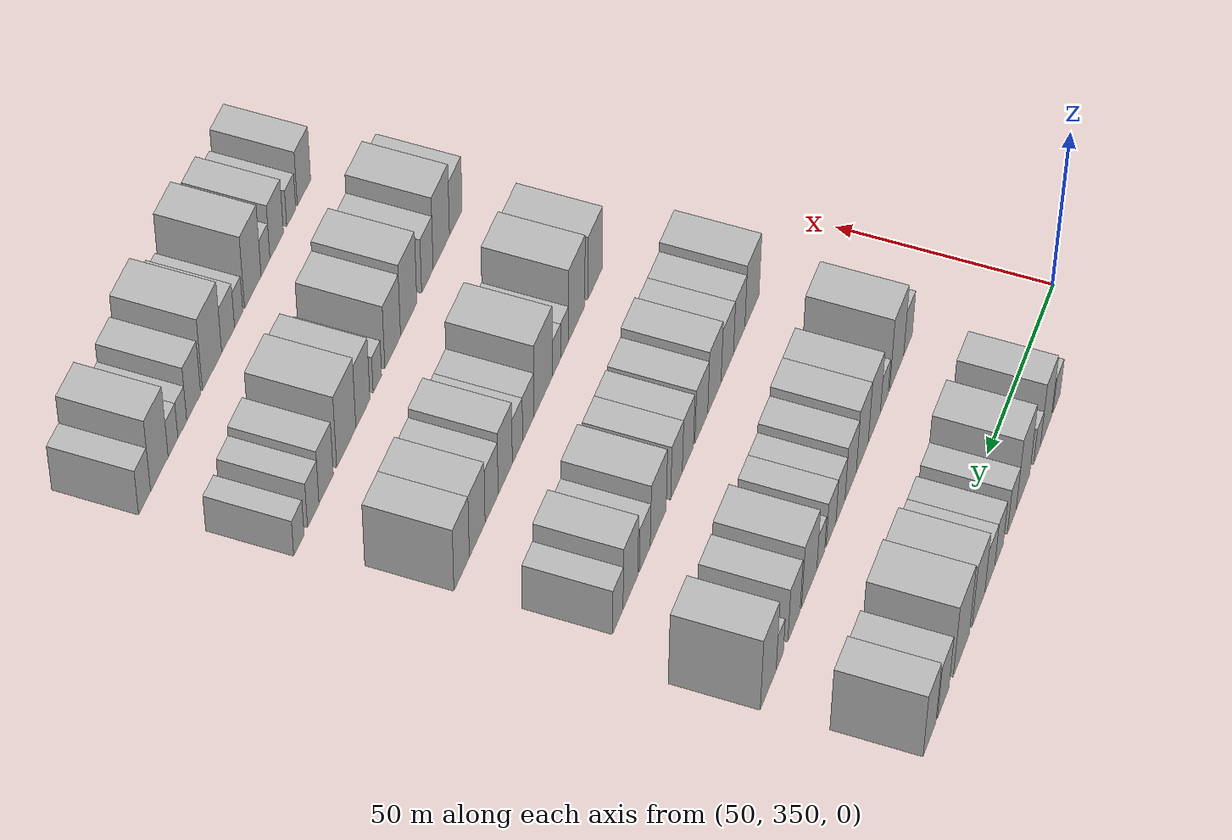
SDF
<sdf version="1.6">
 <world name="default">
  <model name="building_106">
   <static>1</static>
   <pose>50.0000 381.9810 0 0.000000 0.000000 0.000000</pose>
   <link name="link">
    <pose>0 0 6.00 0 0 0</pose>
    <collision name="collision"><geometry><box><size>20.0000 5.7380 12.0000</size></box></geometry></collision>
    <visual name="visual">
     <cast_shadows>0</cast_shadows>
     <geometry><box><size>20.0000 5.7380 12.0000</size></box></geometry>
     <material>
      <script>
       <uri>model://HANNAS_wall/materials/scripts</uri>
       <uri>model://HANNAS_wall/materials/textures</uri>
       <name>vrc/HANNAS_wall</name>
      </script>
     </material>
    </visual>
   </link>
  </model>
  <model name="building_107">
   <static>1</static>
   <pose>50.0000 390.1226 0 0.000000 0.000000 0.000000</pose>
   <link name="link">
    <pose>0 0 10.50 0 0 0</pose>
    <collision name="collision"><geometry><box><size>20.0000 8.5452 21.0000</size></box></geometry></collision>
    <visual name="visual">
     <cast_shadows>0</cast_shadows>
     <geometry><box><size>20.0000 8.5452 21.0000</size></box></geometry>
     <material>
      <script>
       <uri>model://HANNAS_wall/materials/scripts</uri>
       <uri>model://HANNAS_wall/materials/textures</uri>
       <name>vrc/HANNAS_wall</name>
      </script>
     </material>
    </visual>
   </link>
  </model>
  <model name="building_108">
   <static>1</static>
   <pose>50.0000 396.9726 0 0.000000 0.000000 0.000000</pose>
   <link name="link">
    <pose>0 0 6.00 0 0 0</pose>
    <collision name="collision"><geometry><box><size>20.0000 5.1548 12.0000</size></box></geometry></collision>
    <visual name="visual">
     <cast_shadows>0</cast_shadows>
     <geometry><box><size>20.0000 5.1548 12.0000</size></box></geometry>
     <material>
      <script>
       <uri>model://HANNAS_wall/materials/scripts</uri>
       <uri>model://HANNAS_wall/materials/textures</uri>
       <name>vrc/HANNAS_wall</name>
      </script>
     </material>
    </visual>
   </link>
  </model>
  <model name="building_109">
   <static>1</static>
   <pose>50.0000 407.6950 0 0.000000 0.000000 0.000000</pose>
   <link name="link">
    <pose>0 0 12.00 0 0 0</pose>
    <collision name="collision"><geometry><box><size>20.0000 10.2900 24.0000</size></box></geometry></collision>
    <visual name="visual">
     <cast_shadows>0</cast_shadows>
     <geometry><box><size>20.0000 10.2900 24.0000</size></box></geometry>
     <material>
      <script>
       <uri>model://HANNAS_wall/materials/scripts</uri>
       <uri>model://HANNAS_wall/materials/textures</uri>
       <name>vrc/HANNAS_wall</name>
      </script>
     </material>
    </visual>
   </link>
  </model>
  <model name="building_110">
   <static>1</static>
   <pose>50.0000 416.1200 0 0.000000 0.000000 0.000000</pose>
   <link name="link">
    <pose>0 0 7.50 0 0 0</pose>
    <collision name="collision"><geometry><box><size>20.0000 6.5602 15.0000</size></box></geometry></collision>
    <visual name="visual">
     <cast_shadows>0</cast_shadows>
     <geometry><box><size>20.0000 6.5602 15.0000</size></box></geometry>
     <material>
      <script>
       <uri>model://HANNAS_wall/materials/scripts</uri>
       <uri>model://HANNAS_wall/materials/textures</uri>
       <name>vrc/HANNAS_wall</name>
      </script>
     </material>
    </visual>
   </link>
  </model>
  <model name="building_111">
   <static>1</static>
   <pose>50.0000 425.6027 0 0.000000 0.000000 0.000000</pose>
   <link name="link">
    <pose>0 0 7.50 0 0 0</pose>
    <collision name="collision"><geometry><box><size>20.0000 6.4052 15.0000</size></box></geometry></collision>
    <visual name="visual">
     <cast_shadows>0</cast_shadows>
     <geometry><box><size>20.0000 6.4052 15.0000</size></box></geometry>
     <material>
      <script>
       <uri>model://HANNAS_wall/materials/scripts</uri>
       <uri>model://HANNAS_wall/materials/textures</uri>
       <name>vrc/HANNAS_wall</name>
      </script>
     </material>
    </visual>
   </link>
  </model>
  <model name="building_112">
   <static>1</static>
   <pose>50.0000 432.4290 0 0.000000 0.000000 0.000000</pose>
   <link name="link">
    <pose>0 0 7.50 0 0 0</pose>
    <collision name="collision"><geometry><box><size>20.0000 7.2473 15.0000</size></box></geometry></collision>
    <visual name="visual">
     <cast_shadows>0</cast_shadows>
     <geometry><box><size>20.0000 7.2473 15.0000</size></box></geometry>
     <material>
      <script>
       <uri>model://HANNAS_wall/materials/scripts</uri>
       <uri>model://HANNAS_wall/materials/textures</uri>
       <name>vrc/HANNAS_wall</name>
      </script>
     </material>
    </visual>
   </link>
  </model>
  <model name="building_113">
   <static>1</static>
   <pose>50.0000 440.6606 0 0.000000 0.000000 0.000000</pose>
   <link name="link">
    <pose>0 0 10.50 0 0 0</pose>
    <collision name="collision"><geometry><box><size>20.0000 9.2160 21.0000</size></box></geometry></collision>
    <visual name="visual">
     <cast_shadows>0</cast_shadows>
     <geometry><box><size>20.0000 9.2160 21.0000</size></box></geometry>
     <material>
      <script>
       <uri>model://HANNAS_wall/materials/scripts</uri>
       <uri>model://HANNAS_wall/materials/textures</uri>
       <name>vrc/HANNAS_wall</name>
      </script>
     </material>
    </visual>
   </link>
  </model>
  <model name="building_114">
   <static>1</static>
   <pose>50.0000 453.0325 0 0.000000 0.000000 0.000000</pose>
   <link name="link">
    <pose>0 0 12.00 0 0 0</pose>
    <collision name="collision"><geometry><box><size>20.0000 11.5279 24.0000</size></box></geometry></collision>
    <visual name="visual">
     <cast_shadows>0</cast_shadows>
     <geometry><box><size>20.0000 11.5279 24.0000</size></box></geometry>
     <material>
      <script>
       <uri>model://HANNAS_wall/materials/scripts</uri>
       <uri>model://HANNAS_wall/materials/textures</uri>
       <name>vrc/HANNAS_wall</name>
      </script>
     </material>
    </visual>
   </link>
  </model>
  <model name="building_115">
   <static>1</static>
   <pose>50.0000 465.8997 0 0.000000 0.000000 0.000000</pose>
   <link name="link">
    <pose>0 0 9.00 0 0 0</pose>
    <collision name="collision"><geometry><box><size>20.0000 8.2065 18.0000</size></box></geometry></collision>
    <visual name="visual">
     <cast_shadows>0</cast_shadows>
     <geometry><box><size>20.0000 8.2065 18.0000</size></box></geometry>
     <material>
      <script>
       <uri>model://HANNAS_wall/materials/scripts</uri>
       <uri>model://HANNAS_wall/materials/textures</uri>
       <name>vrc/HANNAS_wall</name>
      </script>
     </material>
    </visual>
   </link>
  </model>
  <model name="building_116">
   <static>1</static>
   <pose>50.0000 475.4886 0 0.000000 0.000000 0.000000</pose>
   <link name="link">
    <pose>0 0 10.50 0 0 0</pose>
    <collision name="collision"><geometry><box><size>20.0000 8.9713 21.0000</size></box></geometry></collision>
    <visual name="visual">
     <cast_shadows>0</cast_shadows>
     <geometry><box><size>20.0000 8.9713 21.0000</size></box></geometry>
     <material>
      <script>
       <uri>model://HANNAS_wall/materials/scripts</uri>
       <uri>model://HANNAS_wall/materials/textures</uri>
       <name>vrc/HANNAS_wall</name>
      </script>
     </material>
    </visual>
   </link>
  </model>
  <model name="building_242">
   <static>1</static>
   <pose>85.0000 377.1826 0 0.000000 0.000000 0.000000</pose>
   <link name="link">
    <pose>0 0 7.50 0 0 0</pose>
    <collision name="collision"><geometry><box><size>20.0000 6.2927 15.0000</size></box></geometry></collision>
    <visual name="visual">
     <cast_shadows>0</cast_shadows>
     <geometry><box><size>20.0000 6.2927 15.0000</size></box></geometry>
     <material>
      <script>
       <uri>model://HANNAS_wall/materials/scripts</uri>
       <uri>model://HANNAS_wall/materials/textures</uri>
       <name>vrc/HANNAS_wall</name>
      </script>
     </material>
    </visual>
   </link>
  </model>
  <model name="building_243">
   <static>1</static>
   <pose>85.0000 385.4881 0 0.000000 0.000000 0.000000</pose>
   <link name="link">
    <pose>0 0 12.00 0 0 0</pose>
    <collision name="collision"><geometry><box><size>20.0000 10.3184 24.0000</size></box></geometry></collision>
    <visual name="visual">
     <cast_shadows>0</cast_shadows>
     <geometry><box><size>20.0000 10.3184 24.0000</size></box></geometry>
     <material>
      <script>
       <uri>model://HANNAS_wall/materials/scripts</uri>
       <uri>model://HANNAS_wall/materials/textures</uri>
       <name>vrc/HANNAS_wall</name>
      </script>
     </material>
    </visual>
   </link>
  </model>
  <model name="building_244">
   <static>1</static>
   <pose>85.0000 394.5042 0 0.000000 0.000000 0.000000</pose>
   <link name="link">
    <pose>0 0 6.00 0 0 0</pose>
    <collision name="collision"><geometry><box><size>20.0000 5.7136 12.0000</size></box></geometry></collision>
    <visual name="visual">
     <cast_shadows>0</cast_shadows>
     <geometry><box><size>20.0000 5.7136 12.0000</size></box></geometry>
     <material>
      <script>
       <uri>model://HANNAS_wall/materials/scripts</uri>
       <uri>model://HANNAS_wall/materials/textures</uri>
       <name>vrc/HANNAS_wall</name>
      </script>
     </material>
    </visual>
   </link>
  </model>
  <model name="building_245">
   <static>1</static>
   <pose>85.0000 401.7014 0 0.000000 0.000000 0.000000</pose>
   <link name="link">
    <pose>0 0 10.50 0 0 0</pose>
    <collision name="collision"><geometry><box><size>20.0000 8.6809 21.0000</size></box></geometry></collision>
    <visual name="visual">
     <cast_shadows>0</cast_shadows>
     <geometry><box><size>20.0000 8.6809 21.0000</size></box></geometry>
     <material>
      <script>
       <uri>model://HANNAS_wall/materials/scripts</uri>
       <uri>model://HANNAS_wall/materials/textures</uri>
       <name>vrc/HANNAS_wall</name>
      </script>
     </material>
    </visual>
   </link>
  </model>
  <model name="building_246">
   <static>1</static>
   <pose>85.0000 410.2860 0 0.000000 0.000000 0.000000</pose>
   <link name="link">
    <pose>0 0 10.50 0 0 0</pose>
    <collision name="collision"><geometry><box><size>20.0000 8.4883 21.0000</size></box></geometry></collision>
    <visual name="visual">
     <cast_shadows>0</cast_shadows>
     <geometry><box><size>20.0000 8.4883 21.0000</size></box></geometry>
     <material>
      <script>
       <uri>model://HANNAS_wall/materials/scripts</uri>
       <uri>model://HANNAS_wall/materials/textures</uri>
       <name>vrc/HANNAS_wall</name>
      </script>
     </material>
    </visual>
   </link>
  </model>
  <model name="building_247">
   <static>1</static>
   <pose>85.0000 418.5160 0 0.000000 0.000000 0.000000</pose>
   <link name="link">
    <pose>0 0 9.00 0 0 0</pose>
    <collision name="collision"><geometry><box><size>20.0000 7.9718 18.0000</size></box></geometry></collision>
    <visual name="visual">
     <cast_shadows>0</cast_shadows>
     <geometry><box><size>20.0000 7.9718 18.0000</size></box></geometry>
     <material>
      <script>
       <uri>model://HANNAS_wall/materials/scripts</uri>
       <uri>model://HANNAS_wall/materials/textures</uri>
       <name>vrc/HANNAS_wall</name>
      </script>
     </material>
    </visual>
   </link>
  </model>
  <model name="building_248">
   <static>1</static>
   <pose>85.0000 425.6850 0 0.000000 0.000000 0.000000</pose>
   <link name="link">
    <pose>0 0 7.50 0 0 0</pose>
    <collision name="collision"><geometry><box><size>20.0000 6.3663 15.0000</size></box></geometry></collision>
    <visual name="visual">
     <cast_shadows>0</cast_shadows>
     <geometry><box><size>20.0000 6.3663 15.0000</size></box></geometry>
     <material>
      <script>
       <uri>model://HANNAS_wall/materials/scripts</uri>
       <uri>model://HANNAS_wall/materials/textures</uri>
       <name>vrc/HANNAS_wall</name>
      </script>
     </material>
    </visual>
   </link>
  </model>
  <model name="building_249">
   <static>1</static>
   <pose>85.0000 432.2694 0 0.000000 0.000000 0.000000</pose>
   <link name="link">
    <pose>0 0 7.50 0 0 0</pose>
    <collision name="collision"><geometry><box><size>20.0000 6.8024 15.0000</size></box></geometry></collision>
    <visual name="visual">
     <cast_shadows>0</cast_shadows>
     <geometry><box><size>20.0000 6.8024 15.0000</size></box></geometry>
     <material>
      <script>
       <uri>model://HANNAS_wall/materials/scripts</uri>
       <uri>model://HANNAS_wall/materials/textures</uri>
       <name>vrc/HANNAS_wall</name>
      </script>
     </material>
    </visual>
   </link>
  </model>
  <model name="building_250">
   <static>1</static>
   <pose>85.0000 439.3842 0 0.000000 0.000000 0.000000</pose>
   <link name="link">
    <pose>0 0 6.00 0 0 0</pose>
    <collision name="collision"><geometry><box><size>20.0000 5.4273 12.0000</size></box></geometry></collision>
    <visual name="visual">
     <cast_shadows>0</cast_shadows>
     <geometry><box><size>20.0000 5.4273 12.0000</size></box></geometry>
     <material>
      <script>
       <uri>model://HANNAS_wall/materials/scripts</uri>
       <uri>model://HANNAS_wall/materials/textures</uri>
       <name>vrc/HANNAS_wall</name>
      </script>
     </material>
    </visual>
   </link>
  </model>
  <model name="building_251">
   <static>1</static>
   <pose>85.0000 447.3006 0 0.000000 0.000000 0.000000</pose>
   <link name="link">
    <pose>0 0 10.50 0 0 0</pose>
    <collision name="collision"><geometry><box><size>20.0000 10.4056 21.0000</size></box></geometry></collision>
    <visual name="visual">
     <cast_shadows>0</cast_shadows>
     <geometry><box><size>20.0000 10.4056 21.0000</size></box></geometry>
     <material>
      <script>
       <uri>model://HANNAS_wall/materials/scripts</uri>
       <uri>model://HANNAS_wall/materials/textures</uri>
       <name>vrc/HANNAS_wall</name>
      </script>
     </material>
    </visual>
   </link>
  </model>
  <model name="building_252">
   <static>1</static>
   <pose>85.0000 457.6232 0 0.000000 0.000000 0.000000</pose>
   <link name="link">
    <pose>0 0 9.00 0 0 0</pose>
    <collision name="collision"><geometry><box><size>20.0000 8.2396 18.0000</size></box></geometry></collision>
    <visual name="visual">
     <cast_shadows>0</cast_shadows>
     <geometry><box><size>20.0000 8.2396 18.0000</size></box></geometry>
     <material>
      <script>
       <uri>model://HANNAS_wall/materials/scripts</uri>
       <uri>model://HANNAS_wall/materials/textures</uri>
       <name>vrc/HANNAS_wall</name>
      </script>
     </material>
    </visual>
   </link>
  </model>
  <model name="building_253">
   <static>1</static>
   <pose>85.0000 467.1551 0 0.000000 0.000000 0.000000</pose>
   <link name="link">
    <pose>0 0 6.00 0 0 0</pose>
    <collision name="collision"><geometry><box><size>20.0000 4.8241 12.0000</size></box></geometry></collision>
    <visual name="visual">
     <cast_shadows>0</cast_shadows>
     <geometry><box><size>20.0000 4.8241 12.0000</size></box></geometry>
     <material>
      <script>
       <uri>model://HANNAS_wall/materials/scripts</uri>
       <uri>model://HANNAS_wall/materials/textures</uri>
       <name>vrc/HANNAS_wall</name>
      </script>
     </material>
    </visual>
   </link>
  </model>
  <model name="building_254">
   <static>1</static>
   <pose>85.0000 474.8365 0 0.000000 0.000000 0.000000</pose>
   <link name="link">
    <pose>0 0 12.00 0 0 0</pose>
    <collision name="collision"><geometry><box><size>20.0000 10.5388 24.0000</size></box></geometry></collision>
    <visual name="visual">
     <cast_shadows>0</cast_shadows>
     <geometry><box><size>20.0000 10.5388 24.0000</size></box></geometry>
     <material>
      <script>
       <uri>model://HANNAS_wall/materials/scripts</uri>
       <uri>model://HANNAS_wall/materials/textures</uri>
       <name>vrc/HANNAS_wall</name>
      </script>
     </material>
    </visual>
   </link>
  </model>
  <model name="building_369">
   <static>1</static>
   <pose>120.0000 379.5333 0 0.000000 0.000000 0.000000</pose>
   <link name="link">
    <pose>0 0 10.50 0 0 0</pose>
    <collision name="collision"><geometry><box><size>20.0000 9.8755 21.0000</size></box></geometry></collision>
    <visual name="visual">
     <cast_shadows>0</cast_shadows>
     <geometry><box><size>20.0000 9.8755 21.0000</size></box></geometry>
     <material>
      <script>
       <uri>model://HANNAS_wall/materials/scripts</uri>
       <uri>model://HANNAS_wall/materials/textures</uri>
       <name>vrc/HANNAS_wall</name>
      </script>
     </material>
    </visual>
   </link>
  </model>
  <model name="building_370">
   <static>1</static>
   <pose>120.0000 388.4076 0 0.000000 0.000000 0.000000</pose>
   <link name="link">
    <pose>0 0 9.00 0 0 0</pose>
    <collision name="collision"><geometry><box><size>20.0000 7.8731 18.0000</size></box></geometry></collision>
    <visual name="visual">
     <cast_shadows>0</cast_shadows>
     <geometry><box><size>20.0000 7.8731 18.0000</size></box></geometry>
     <material>
      <script>
       <uri>model://HANNAS_wall/materials/scripts</uri>
       <uri>model://HANNAS_wall/materials/textures</uri>
       <name>vrc/HANNAS_wall</name>
      </script>
     </material>
    </visual>
   </link>
  </model>
  <model name="building_371">
   <static>1</static>
   <pose>120.0000 396.6128 0 0.000000 0.000000 0.000000</pose>
   <link name="link">
    <pose>0 0 9.00 0 0 0</pose>
    <collision name="collision"><geometry><box><size>20.0000 8.5371 18.0000</size></box></geometry></collision>
    <visual name="visual">
     <cast_shadows>0</cast_shadows>
     <geometry><box><size>20.0000 8.5371 18.0000</size></box></geometry>
     <material>
      <script>
       <uri>model://HANNAS_wall/materials/scripts</uri>
       <uri>model://HANNAS_wall/materials/textures</uri>
       <name>vrc/HANNAS_wall</name>
      </script>
     </material>
    </visual>
   </link>
  </model>
  <model name="building_372">
   <static>1</static>
   <pose>120.0000 405.4107 0 0.000000 0.000000 0.000000</pose>
   <link name="link">
    <pose>0 0 10.50 0 0 0</pose>
    <collision name="collision"><geometry><box><size>20.0000 9.0587 21.0000</size></box></geometry></collision>
    <visual name="visual">
     <cast_shadows>0</cast_shadows>
     <geometry><box><size>20.0000 9.0587 21.0000</size></box></geometry>
     <material>
      <script>
       <uri>model://HANNAS_wall/materials/scripts</uri>
       <uri>model://HANNAS_wall/materials/textures</uri>
       <name>vrc/HANNAS_wall</name>
      </script>
     </material>
    </visual>
   </link>
  </model>
  <model name="building_373">
   <static>1</static>
   <pose>120.0000 414.2341 0 0.000000 0.000000 0.000000</pose>
   <link name="link">
    <pose>0 0 9.00 0 0 0</pose>
    <collision name="collision"><geometry><box><size>20.0000 8.5881 18.0000</size></box></geometry></collision>
    <visual name="visual">
     <cast_shadows>0</cast_shadows>
     <geometry><box><size>20.0000 8.5881 18.0000</size></box></geometry>
     <material>
      <script>
       <uri>model://HANNAS_wall/materials/scripts</uri>
       <uri>model://HANNAS_wall/materials/textures</uri>
       <name>vrc/HANNAS_wall</name>
      </script>
     </material>
    </visual>
   </link>
  </model>
  <model name="building_374">
   <static>1</static>
   <pose>120.0000 423.2610 0 0.000000 0.000000 0.000000</pose>
   <link name="link">
    <pose>0 0 9.00 0 0 0</pose>
    <collision name="collision"><geometry><box><size>20.0000 7.4658 18.0000</size></box></geometry></collision>
    <visual name="visual">
     <cast_shadows>0</cast_shadows>
     <geometry><box><size>20.0000 7.4658 18.0000</size></box></geometry>
     <material>
      <script>
       <uri>model://HANNAS_wall/materials/scripts</uri>
       <uri>model://HANNAS_wall/materials/textures</uri>
       <name>vrc/HANNAS_wall</name>
      </script>
     </material>
    </visual>
   </link>
  </model>
  <model name="building_375">
   <static>1</static>
   <pose>120.0000 430.8165 0 0.000000 0.000000 0.000000</pose>
   <link name="link">
    <pose>0 0 9.00 0 0 0</pose>
    <collision name="collision"><geometry><box><size>20.0000 7.6453 18.0000</size></box></geometry></collision>
    <visual name="visual">
     <cast_shadows>0</cast_shadows>
     <geometry><box><size>20.0000 7.6453 18.0000</size></box></geometry>
     <material>
      <script>
       <uri>model://HANNAS_wall/materials/scripts</uri>
       <uri>model://HANNAS_wall/materials/textures</uri>
       <name>vrc/HANNAS_wall</name>
      </script>
     </material>
    </visual>
   </link>
  </model>
  <model name="building_376">
   <static>1</static>
   <pose>120.0000 442.8341 0 0.000000 0.000000 0.000000</pose>
   <link name="link">
    <pose>0 0 10.50 0 0 0</pose>
    <collision name="collision"><geometry><box><size>20.0000 10.3898 21.0000</size></box></geometry></collision>
    <visual name="visual">
     <cast_shadows>0</cast_shadows>
     <geometry><box><size>20.0000 10.3898 21.0000</size></box></geometry>
     <material>
      <script>
       <uri>model://HANNAS_wall/materials/scripts</uri>
       <uri>model://HANNAS_wall/materials/textures</uri>
       <name>vrc/HANNAS_wall</name>
      </script>
     </material>
    </visual>
   </link>
  </model>
  <model name="building_377">
   <static>1</static>
   <pose>120.0000 451.5544 0 0.000000 0.000000 0.000000</pose>
   <link name="link">
    <pose>0 0 7.50 0 0 0</pose>
    <collision name="collision"><geometry><box><size>20.0000 7.0509 15.0000</size></box></geometry></collision>
    <visual name="visual">
     <cast_shadows>0</cast_shadows>
     <geometry><box><size>20.0000 7.0509 15.0000</size></box></geometry>
     <material>
      <script>
       <uri>model://HANNAS_wall/materials/scripts</uri>
       <uri>model://HANNAS_wall/materials/textures</uri>
       <name>vrc/HANNAS_wall</name>
      </script>
     </material>
    </visual>
   </link>
  </model>
  <model name="building_378">
   <static>1</static>
   <pose>120.0000 460.7986 0 0.000000 0.000000 0.000000</pose>
   <link name="link">
    <pose>0 0 10.50 0 0 0</pose>
    <collision name="collision"><geometry><box><size>20.0000 9.4376 21.0000</size></box></geometry></collision>
    <visual name="visual">
     <cast_shadows>0</cast_shadows>
     <geometry><box><size>20.0000 9.4376 21.0000</size></box></geometry>
     <material>
      <script>
       <uri>model://HANNAS_wall/materials/scripts</uri>
       <uri>model://HANNAS_wall/materials/textures</uri>
       <name>vrc/HANNAS_wall</name>
      </script>
     </material>
    </visual>
   </link>
  </model>
  <model name="building_379">
   <static>1</static>
   <pose>120.0000 468.8391 0 0.000000 0.000000 0.000000</pose>
   <link name="link">
    <pose>0 0 7.50 0 0 0</pose>
    <collision name="collision"><geometry><box><size>20.0000 6.6434 15.0000</size></box></geometry></collision>
    <visual name="visual">
     <cast_shadows>0</cast_shadows>
     <geometry><box><size>20.0000 6.6434 15.0000</size></box></geometry>
     <material>
      <script>
       <uri>model://HANNAS_wall/materials/scripts</uri>
       <uri>model://HANNAS_wall/materials/textures</uri>
       <name>vrc/HANNAS_wall</name>
      </script>
     </material>
    </visual>
   </link>
  </model>
  <model name="building_496">
   <static>1</static>
   <pose>155.0000 383.5993 0 0.000000 0.000000 0.000000</pose>
   <link name="link">
    <pose>0 0 10.50 0 0 0</pose>
    <collision name="collision"><geometry><box><size>20.0000 9.4969 21.0000</size></box></geometry></collision>
    <visual name="visual">
     <cast_shadows>0</cast_shadows>
     <geometry><box><size>20.0000 9.4969 21.0000</size></box></geometry>
     <material>
      <script>
       <uri>model://HANNAS_wall/materials/scripts</uri>
       <uri>model://HANNAS_wall/materials/textures</uri>
       <name>vrc/HANNAS_wall</name>
      </script>
     </material>
    </visual>
   </link>
  </model>
  <model name="building_497">
   <static>1</static>
   <pose>155.0000 395.6559 0 0.000000 0.000000 0.000000</pose>
   <link name="link">
    <pose>0 0 12.00 0 0 0</pose>
    <collision name="collision"><geometry><box><size>20.0000 10.6163 24.0000</size></box></geometry></collision>
    <visual name="visual">
     <cast_shadows>0</cast_shadows>
     <geometry><box><size>20.0000 10.6163 24.0000</size></box></geometry>
     <material>
      <script>
       <uri>model://HANNAS_wall/materials/scripts</uri>
       <uri>model://HANNAS_wall/materials/textures</uri>
       <name>vrc/HANNAS_wall</name>
      </script>
     </material>
    </visual>
   </link>
  </model>
  <model name="building_498">
   <static>1</static>
   <pose>155.0000 403.5810 0 0.000000 0.000000 0.000000</pose>
   <link name="link">
    <pose>0 0 6.00 0 0 0</pose>
    <collision name="collision"><geometry><box><size>20.0000 5.2339 12.0000</size></box></geometry></collision>
    <visual name="visual">
     <cast_shadows>0</cast_shadows>
     <geometry><box><size>20.0000 5.2339 12.0000</size></box></geometry>
     <material>
      <script>
       <uri>model://HANNAS_wall/materials/scripts</uri>
       <uri>model://HANNAS_wall/materials/textures</uri>
       <name>vrc/HANNAS_wall</name>
      </script>
     </material>
    </visual>
   </link>
  </model>
  <model name="building_499">
   <static>1</static>
   <pose>155.0000 408.8641 0 0.000000 0.000000 0.000000</pose>
   <link name="link">
    <pose>0 0 6.00 0 0 0</pose>
    <collision name="collision"><geometry><box><size>20.0000 5.3323 12.0000</size></box></geometry></collision>
    <visual name="visual">
     <cast_shadows>0</cast_shadows>
     <geometry><box><size>20.0000 5.3323 12.0000</size></box></geometry>
     <material>
      <script>
       <uri>model://HANNAS_wall/materials/scripts</uri>
       <uri>model://HANNAS_wall/materials/textures</uri>
       <name>vrc/HANNAS_wall</name>
      </script>
     </material>
    </visual>
   </link>
  </model>
  <model name="building_500">
   <static>1</static>
   <pose>155.0000 417.3639 0 0.000000 0.000000 0.000000</pose>
   <link name="link">
    <pose>0 0 12.00 0 0 0</pose>
    <collision name="collision"><geometry><box><size>20.0000 11.6673 24.0000</size></box></geometry></collision>
    <visual name="visual">
     <cast_shadows>0</cast_shadows>
     <geometry><box><size>20.0000 11.6673 24.0000</size></box></geometry>
     <material>
      <script>
       <uri>model://HANNAS_wall/materials/scripts</uri>
       <uri>model://HANNAS_wall/materials/textures</uri>
       <name>vrc/HANNAS_wall</name>
      </script>
     </material>
    </visual>
   </link>
  </model>
  <model name="building_501">
   <static>1</static>
   <pose>155.0000 426.8096 0 0.000000 0.000000 0.000000</pose>
   <link name="link">
    <pose>0 0 7.50 0 0 0</pose>
    <collision name="collision"><geometry><box><size>20.0000 7.2241 15.0000</size></box></geometry></collision>
    <visual name="visual">
     <cast_shadows>0</cast_shadows>
     <geometry><box><size>20.0000 7.2241 15.0000</size></box></geometry>
     <material>
      <script>
       <uri>model://HANNAS_wall/materials/scripts</uri>
       <uri>model://HANNAS_wall/materials/textures</uri>
       <name>vrc/HANNAS_wall</name>
      </script>
     </material>
    </visual>
   </link>
  </model>
  <model name="building_502">
   <static>1</static>
   <pose>155.0000 433.6417 0 0.000000 0.000000 0.000000</pose>
   <link name="link">
    <pose>0 0 7.50 0 0 0</pose>
    <collision name="collision"><geometry><box><size>20.0000 6.4400 15.0000</size></box></geometry></collision>
    <visual name="visual">
     <cast_shadows>0</cast_shadows>
     <geometry><box><size>20.0000 6.4400 15.0000</size></box></geometry>
     <material>
      <script>
       <uri>model://HANNAS_wall/materials/scripts</uri>
       <uri>model://HANNAS_wall/materials/textures</uri>
       <name>vrc/HANNAS_wall</name>
      </script>
     </material>
    </visual>
   </link>
  </model>
  <model name="building_503">
   <static>1</static>
   <pose>155.0000 441.2783 0 0.000000 0.000000 0.000000</pose>
   <link name="link">
    <pose>0 0 10.50 0 0 0</pose>
    <collision name="collision"><geometry><box><size>20.0000 8.8332 21.0000</size></box></geometry></collision>
    <visual name="visual">
     <cast_shadows>0</cast_shadows>
     <geometry><box><size>20.0000 8.8332 21.0000</size></box></geometry>
     <material>
      <script>
       <uri>model://HANNAS_wall/materials/scripts</uri>
       <uri>model://HANNAS_wall/materials/textures</uri>
       <name>vrc/HANNAS_wall</name>
      </script>
     </material>
    </visual>
   </link>
  </model>
  <model name="building_504">
   <static>1</static>
   <pose>155.0000 449.7177 0 0.000000 0.000000 0.000000</pose>
   <link name="link">
    <pose>0 0 9.00 0 0 0</pose>
    <collision name="collision"><geometry><box><size>20.0000 8.0457 18.0000</size></box></geometry></collision>
    <visual name="visual">
     <cast_shadows>0</cast_shadows>
     <geometry><box><size>20.0000 8.0457 18.0000</size></box></geometry>
     <material>
      <script>
       <uri>model://HANNAS_wall/materials/scripts</uri>
       <uri>model://HANNAS_wall/materials/textures</uri>
       <name>vrc/HANNAS_wall</name>
      </script>
     </material>
    </visual>
   </link>
  </model>
  <model name="building_505">
   <static>1</static>
   <pose>155.0000 458.5723 0 0.000000 0.000000 0.000000</pose>
   <link name="link">
    <pose>0 0 10.50 0 0 0</pose>
    <collision name="collision"><geometry><box><size>20.0000 9.6635 21.0000</size></box></geometry></collision>
    <visual name="visual">
     <cast_shadows>0</cast_shadows>
     <geometry><box><size>20.0000 9.6635 21.0000</size></box></geometry>
     <material>
      <script>
       <uri>model://HANNAS_wall/materials/scripts</uri>
       <uri>model://HANNAS_wall/materials/textures</uri>
       <name>vrc/HANNAS_wall</name>
      </script>
     </material>
    </visual>
   </link>
  </model>
  <model name="building_506">
   <static>1</static>
   <pose>155.0000 468.0677 0 0.000000 0.000000 0.000000</pose>
   <link name="link">
    <pose>0 0 10.50 0 0 0</pose>
    <collision name="collision"><geometry><box><size>20.0000 9.3273 21.0000</size></box></geometry></collision>
    <visual name="visual">
     <cast_shadows>0</cast_shadows>
     <geometry><box><size>20.0000 9.3273 21.0000</size></box></geometry>
     <material>
      <script>
       <uri>model://HANNAS_wall/materials/scripts</uri>
       <uri>model://HANNAS_wall/materials/textures</uri>
       <name>vrc/HANNAS_wall</name>
      </script>
     </material>
    </visual>
   </link>
  </model>
  <model name="building_625">
   <static>1</static>
   <pose>190.0000 377.2475 0 0.000000 0.000000 0.000000</pose>
   <link name="link">
    <pose>0 0 9.00 0 0 0</pose>
    <collision name="collision"><geometry><box><size>20.0000 8.0081 18.0000</size></box></geometry></collision>
    <visual name="visual">
     <cast_shadows>0</cast_shadows>
     <geometry><box><size>20.0000 8.0081 18.0000</size></box></geometry>
     <material>
      <script>
       <uri>model://HANNAS_wall/materials/scripts</uri>
       <uri>model://HANNAS_wall/materials/textures</uri>
       <name>vrc/HANNAS_wall</name>
      </script>
     </material>
    </visual>
   </link>
  </model>
  <model name="building_626">
   <static>1</static>
   <pose>190.0000 386.4183 0 0.000000 0.000000 0.000000</pose>
   <link name="link">
    <pose>0 0 12.00 0 0 0</pose>
    <collision name="collision"><geometry><box><size>20.0000 10.3337 24.0000</size></box></geometry></collision>
    <visual name="visual">
     <cast_shadows>0</cast_shadows>
     <geometry><box><size>20.0000 10.3337 24.0000</size></box></geometry>
     <material>
      <script>
       <uri>model://HANNAS_wall/materials/scripts</uri>
       <uri>model://HANNAS_wall/materials/textures</uri>
       <name>vrc/HANNAS_wall</name>
      </script>
     </material>
    </visual>
   </link>
  </model>
  <model name="building_627">
   <static>1</static>
   <pose>190.0000 395.1937 0 0.000000 0.000000 0.000000</pose>
   <link name="link">
    <pose>0 0 9.00 0 0 0</pose>
    <collision name="collision"><geometry><box><size>20.0000 7.2169 18.0000</size></box></geometry></collision>
    <visual name="visual">
     <cast_shadows>0</cast_shadows>
     <geometry><box><size>20.0000 7.2169 18.0000</size></box></geometry>
     <material>
      <script>
       <uri>model://HANNAS_wall/materials/scripts</uri>
       <uri>model://HANNAS_wall/materials/textures</uri>
       <name>vrc/HANNAS_wall</name>
      </script>
     </material>
    </visual>
   </link>
  </model>
  <model name="building_628">
   <static>1</static>
   <pose>190.0000 406.8496 0 0.000000 0.000000 0.000000</pose>
   <link name="link">
    <pose>0 0 12.00 0 0 0</pose>
    <collision name="collision"><geometry><box><size>20.0000 10.0951 24.0000</size></box></geometry></collision>
    <visual name="visual">
     <cast_shadows>0</cast_shadows>
     <geometry><box><size>20.0000 10.0951 24.0000</size></box></geometry>
     <material>
      <script>
       <uri>model://HANNAS_wall/materials/scripts</uri>
       <uri>model://HANNAS_wall/materials/textures</uri>
       <name>vrc/HANNAS_wall</name>
      </script>
     </material>
    </visual>
   </link>
  </model>
  <model name="building_629">
   <static>1</static>
   <pose>190.0000 416.7055 0 0.000000 0.000000 0.000000</pose>
   <link name="link">
    <pose>0 0 10.50 0 0 0</pose>
    <collision name="collision"><geometry><box><size>20.0000 9.6166 21.0000</size></box></geometry></collision>
    <visual name="visual">
     <cast_shadows>0</cast_shadows>
     <geometry><box><size>20.0000 9.6166 21.0000</size></box></geometry>
     <material>
      <script>
       <uri>model://HANNAS_wall/materials/scripts</uri>
       <uri>model://HANNAS_wall/materials/textures</uri>
       <name>vrc/HANNAS_wall</name>
      </script>
     </material>
    </visual>
   </link>
  </model>
  <model name="building_630">
   <static>1</static>
   <pose>190.0000 426.0531 0 0.000000 0.000000 0.000000</pose>
   <link name="link">
    <pose>0 0 6.00 0 0 0</pose>
    <collision name="collision"><geometry><box><size>20.0000 5.0786 12.0000</size></box></geometry></collision>
    <visual name="visual">
     <cast_shadows>0</cast_shadows>
     <geometry><box><size>20.0000 5.0786 12.0000</size></box></geometry>
     <material>
      <script>
       <uri>model://HANNAS_wall/materials/scripts</uri>
       <uri>model://HANNAS_wall/materials/textures</uri>
       <name>vrc/HANNAS_wall</name>
      </script>
     </material>
    </visual>
   </link>
  </model>
  <model name="building_631">
   <static>1</static>
   <pose>190.0000 434.8003 0 0.000000 0.000000 0.000000</pose>
   <link name="link">
    <pose>0 0 10.50 0 0 0</pose>
    <collision name="collision"><geometry><box><size>20.0000 8.4159 21.0000</size></box></geometry></collision>
    <visual name="visual">
     <cast_shadows>0</cast_shadows>
     <geometry><box><size>20.0000 8.4159 21.0000</size></box></geometry>
     <material>
      <script>
       <uri>model://HANNAS_wall/materials/scripts</uri>
       <uri>model://HANNAS_wall/materials/textures</uri>
       <name>vrc/HANNAS_wall</name>
      </script>
     </material>
    </visual>
   </link>
  </model>
  <model name="building_632">
   <static>1</static>
   <pose>190.0000 444.7090 0 0.000000 0.000000 0.000000</pose>
   <link name="link">
    <pose>0 0 12.00 0 0 0</pose>
    <collision name="collision"><geometry><box><size>20.0000 11.4016 24.0000</size></box></geometry></collision>
    <visual name="visual">
     <cast_shadows>0</cast_shadows>
     <geometry><box><size>20.0000 11.4016 24.0000</size></box></geometry>
     <material>
      <script>
       <uri>model://HANNAS_wall/materials/scripts</uri>
       <uri>model://HANNAS_wall/materials/textures</uri>
       <name>vrc/HANNAS_wall</name>
      </script>
     </material>
    </visual>
   </link>
  </model>
  <model name="building_633">
   <static>1</static>
   <pose>190.0000 456.6063 0 0.000000 0.000000 0.000000</pose>
   <link name="link">
    <pose>0 0 9.00 0 0 0</pose>
    <collision name="collision"><geometry><box><size>20.0000 8.3930 18.0000</size></box></geometry></collision>
    <visual name="visual">
     <cast_shadows>0</cast_shadows>
     <geometry><box><size>20.0000 8.3930 18.0000</size></box></geometry>
     <material>
      <script>
       <uri>model://HANNAS_wall/materials/scripts</uri>
       <uri>model://HANNAS_wall/materials/textures</uri>
       <name>vrc/HANNAS_wall</name>
      </script>
     </material>
    </visual>
   </link>
  </model>
  <model name="building_634">
   <static>1</static>
   <pose>190.0000 464.1378 0 0.000000 0.000000 0.000000</pose>
   <link name="link">
    <pose>0 0 7.50 0 0 0</pose>
    <collision name="collision"><geometry><box><size>20.0000 6.6699 15.0000</size></box></geometry></collision>
    <visual name="visual">
     <cast_shadows>0</cast_shadows>
     <geometry><box><size>20.0000 6.6699 15.0000</size></box></geometry>
     <material>
      <script>
       <uri>model://HANNAS_wall/materials/scripts</uri>
       <uri>model://HANNAS_wall/materials/textures</uri>
       <name>vrc/HANNAS_wall</name>
      </script>
     </material>
    </visual>
   </link>
  </model>
  <model name="building_635">
   <static>1</static>
   <pose>190.0000 472.4574 0 0.000000 0.000000 0.000000</pose>
   <link name="link">
    <pose>0 0 6.00 0 0 0</pose>
    <collision name="collision"><geometry><box><size>20.0000 5.9693 12.0000</size></box></geometry></collision>
    <visual name="visual">
     <cast_shadows>0</cast_shadows>
     <geometry><box><size>20.0000 5.9693 12.0000</size></box></geometry>
     <material>
      <script>
       <uri>model://HANNAS_wall/materials/scripts</uri>
       <uri>model://HANNAS_wall/materials/textures</uri>
       <name>vrc/HANNAS_wall</name>
      </script>
     </material>
    </visual>
   </link>
  </model>
  <model name="building_745">
   <static>1</static>
   <pose>225.0000 380.3533 0 0.000000 0.000000 0.000000</pose>
   <link name="link">
    <pose>0 0 9.00 0 0 0</pose>
    <collision name="collision"><geometry><box><size>20.0000 8.0830 18.0000</size></box></geometry></collision>
    <visual name="visual">
     <cast_shadows>0</cast_shadows>
     <geometry><box><size>20.0000 8.0830 18.0000</size></box></geometry>
     <material>
      <script>
       <uri>model://HANNAS_wall/materials/scripts</uri>
       <uri>model://HANNAS_wall/materials/textures</uri>
       <name>vrc/HANNAS_wall</name>
      </script>
     </material>
    </visual>
   </link>
  </model>
  <model name="building_746">
   <static>1</static>
   <pose>225.0000 388.1096 0 0.000000 0.000000 0.000000</pose>
   <link name="link">
    <pose>0 0 6.00 0 0 0</pose>
    <collision name="collision"><geometry><box><size>20.0000 5.4296 12.0000</size></box></geometry></collision>
    <visual name="visual">
     <cast_shadows>0</cast_shadows>
     <geometry><box><size>20.0000 5.4296 12.0000</size></box></geometry>
     <material>
      <script>
       <uri>model://HANNAS_wall/materials/scripts</uri>
       <uri>model://HANNAS_wall/materials/textures</uri>
       <name>vrc/HANNAS_wall</name>
      </script>
     </material>
    </visual>
   </link>
  </model>
  <model name="building_747">
   <static>1</static>
   <pose>225.0000 396.8717 0 0.000000 0.000000 0.000000</pose>
   <link name="link">
    <pose>0 0 9.00 0 0 0</pose>
    <collision name="collision"><geometry><box><size>20.0000 8.0946 18.0000</size></box></geometry></collision>
    <visual name="visual">
     <cast_shadows>0</cast_shadows>
     <geometry><box><size>20.0000 8.0946 18.0000</size></box></geometry>
     <material>
      <script>
       <uri>model://HANNAS_wall/materials/scripts</uri>
       <uri>model://HANNAS_wall/materials/textures</uri>
       <name>vrc/HANNAS_wall</name>
      </script>
     </material>
    </visual>
   </link>
  </model>
  <model name="building_748">
   <static>1</static>
   <pose>225.0000 403.5501 0 0.000000 0.000000 0.000000</pose>
   <link name="link">
    <pose>0 0 6.00 0 0 0</pose>
    <collision name="collision"><geometry><box><size>20.0000 5.2622 12.0000</size></box></geometry></collision>
    <visual name="visual">
     <cast_shadows>0</cast_shadows>
     <geometry><box><size>20.0000 5.2622 12.0000</size></box></geometry>
     <material>
      <script>
       <uri>model://HANNAS_wall/materials/scripts</uri>
       <uri>model://HANNAS_wall/materials/textures</uri>
       <name>vrc/HANNAS_wall</name>
      </script>
     </material>
    </visual>
   </link>
  </model>
  <model name="building_749">
   <static>1</static>
   <pose>225.0000 411.0681 0 0.000000 0.000000 0.000000</pose>
   <link name="link">
    <pose>0 0 12.00 0 0 0</pose>
    <collision name="collision"><geometry><box><size>20.0000 9.7739 24.0000</size></box></geometry></collision>
    <visual name="visual">
     <cast_shadows>0</cast_shadows>
     <geometry><box><size>20.0000 9.7739 24.0000</size></box></geometry>
     <material>
      <script>
       <uri>model://HANNAS_wall/materials/scripts</uri>
       <uri>model://HANNAS_wall/materials/textures</uri>
       <name>vrc/HANNAS_wall</name>
      </script>
     </material>
    </visual>
   </link>
  </model>
  <model name="building_750">
   <static>1</static>
   <pose>225.0000 419.3804 0 0.000000 0.000000 0.000000</pose>
   <link name="link">
    <pose>0 0 6.00 0 0 0</pose>
    <collision name="collision"><geometry><box><size>20.0000 4.8506 12.0000</size></box></geometry></collision>
    <visual name="visual">
     <cast_shadows>0</cast_shadows>
     <geometry><box><size>20.0000 4.8506 12.0000</size></box></geometry>
     <material>
      <script>
       <uri>model://HANNAS_wall/materials/scripts</uri>
       <uri>model://HANNAS_wall/materials/textures</uri>
       <name>vrc/HANNAS_wall</name>
      </script>
     </material>
    </visual>
   </link>
  </model>
  <model name="building_751">
   <static>1</static>
   <pose>225.0000 425.5551 0 0.000000 0.000000 0.000000</pose>
   <link name="link">
    <pose>0 0 7.50 0 0 0</pose>
    <collision name="collision"><geometry><box><size>20.0000 7.4987 15.0000</size></box></geometry></collision>
    <visual name="visual">
     <cast_shadows>0</cast_shadows>
     <geometry><box><size>20.0000 7.4987 15.0000</size></box></geometry>
     <material>
      <script>
       <uri>model://HANNAS_wall/materials/scripts</uri>
       <uri>model://HANNAS_wall/materials/textures</uri>
       <name>vrc/HANNAS_wall</name>
      </script>
     </material>
    </visual>
   </link>
  </model>
  <model name="building_752">
   <static>1</static>
   <pose>225.0000 434.8611 0 0.000000 0.000000 0.000000</pose>
   <link name="link">
    <pose>0 0 12.00 0 0 0</pose>
    <collision name="collision"><geometry><box><size>20.0000 11.1132 24.0000</size></box></geometry></collision>
    <visual name="visual">
     <cast_shadows>0</cast_shadows>
     <geometry><box><size>20.0000 11.1132 24.0000</size></box></geometry>
     <material>
      <script>
       <uri>model://HANNAS_wall/materials/scripts</uri>
       <uri>model://HANNAS_wall/materials/textures</uri>
       <name>vrc/HANNAS_wall</name>
      </script>
     </material>
    </visual>
   </link>
  </model>
  <model name="building_753">
   <static>1</static>
   <pose>225.0000 445.3947 0 0.000000 0.000000 0.000000</pose>
   <link name="link">
    <pose>0 0 9.00 0 0 0</pose>
    <collision name="collision"><geometry><box><size>20.0000 7.9540 18.0000</size></box></geometry></collision>
    <visual name="visual">
     <cast_shadows>0</cast_shadows>
     <geometry><box><size>20.0000 7.9540 18.0000</size></box></geometry>
     <material>
      <script>
       <uri>model://HANNAS_wall/materials/scripts</uri>
       <uri>model://HANNAS_wall/materials/textures</uri>
       <name>vrc/HANNAS_wall</name>
      </script>
     </material>
    </visual>
   </link>
  </model>
  <model name="building_754">
   <static>1</static>
   <pose>225.0000 451.8696 0 0.000000 0.000000 0.000000</pose>
   <link name="link">
    <pose>0 0 6.00 0 0 0</pose>
    <collision name="collision"><geometry><box><size>20.0000 4.9958 12.0000</size></box></geometry></collision>
    <visual name="visual">
     <cast_shadows>0</cast_shadows>
     <geometry><box><size>20.0000 4.9958 12.0000</size></box></geometry>
     <material>
      <script>
       <uri>model://HANNAS_wall/materials/scripts</uri>
       <uri>model://HANNAS_wall/materials/textures</uri>
       <name>vrc/HANNAS_wall</name>
      </script>
     </material>
    </visual>
   </link>
  </model>
  <model name="building_755">
   <static>1</static>
   <pose>225.0000 457.1060 0 0.000000 0.000000 0.000000</pose>
   <link name="link">
    <pose>0 0 6.00 0 0 0</pose>
    <collision name="collision"><geometry><box><size>20.0000 5.4771 12.0000</size></box></geometry></collision>
    <visual name="visual">
     <cast_shadows>0</cast_shadows>
     <geometry><box><size>20.0000 5.4771 12.0000</size></box></geometry>
     <material>
      <script>
       <uri>model://HANNAS_wall/materials/scripts</uri>
       <uri>model://HANNAS_wall/materials/textures</uri>
       <name>vrc/HANNAS_wall</name>
      </script>
     </material>
    </visual>
   </link>
  </model>
  <model name="building_756">
   <static>1</static>
   <pose>225.0000 464.7548 0 0.000000 0.000000 0.000000</pose>
   <link name="link">
    <pose>0 0 12.00 0 0 0</pose>
    <collision name="collision"><geometry><box><size>20.0000 9.8206 24.0000</size></box></geometry></collision>
    <visual name="visual">
     <cast_shadows>0</cast_shadows>
     <geometry><box><size>20.0000 9.8206 24.0000</size></box></geometry>
     <material>
      <script>
       <uri>model://HANNAS_wall/materials/scripts</uri>
       <uri>model://HANNAS_wall/materials/textures</uri>
       <name>vrc/HANNAS_wall</name>
      </script>
     </material>
    </visual>
   </link>
  </model>
  <model name="building_757">
   <static>1</static>
   <pose>225.0000 472.9954 0 0.000000 0.000000 0.000000</pose>
   <link name="link">
    <pose>0 0 7.50 0 0 0</pose>
    <collision name="collision"><geometry><box><size>20.0000 6.6605 15.0000</size></box></geometry></collision>
    <visual name="visual">
     <cast_shadows>0</cast_shadows>
     <geometry><box><size>20.0000 6.6605 15.0000</size></box></geometry>
     <material>
      <script>
       <uri>model://HANNAS_wall/materials/scripts</uri>
       <uri>model://HANNAS_wall/materials/textures</uri>
       <name>vrc/HANNAS_wall</name>
      </script>
     </material>
    </visual>
   </link>
  </model>
 </world>
</sdf>
